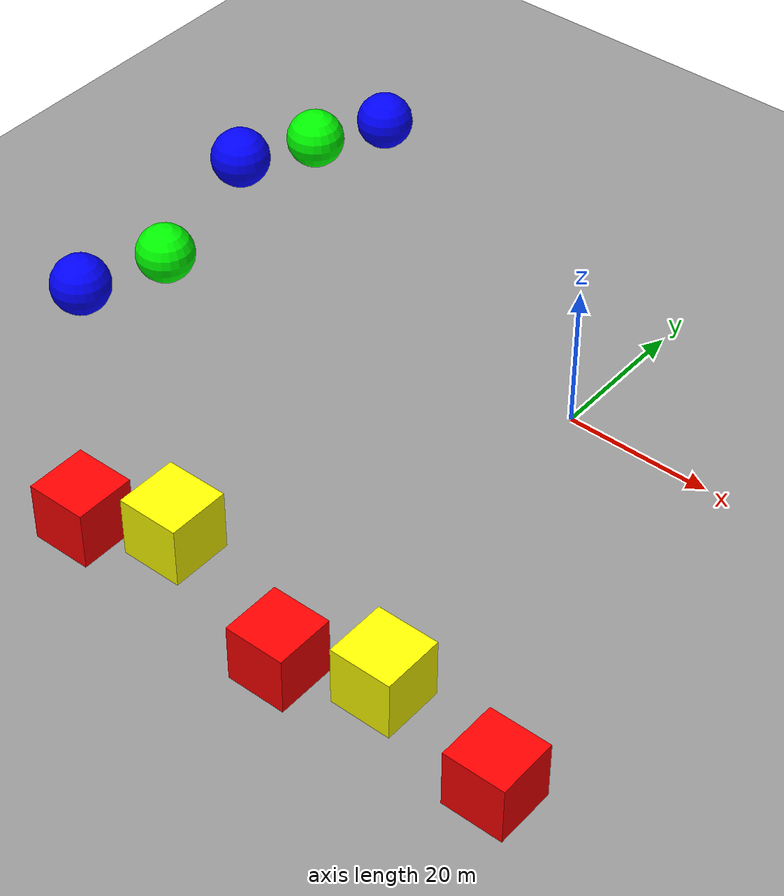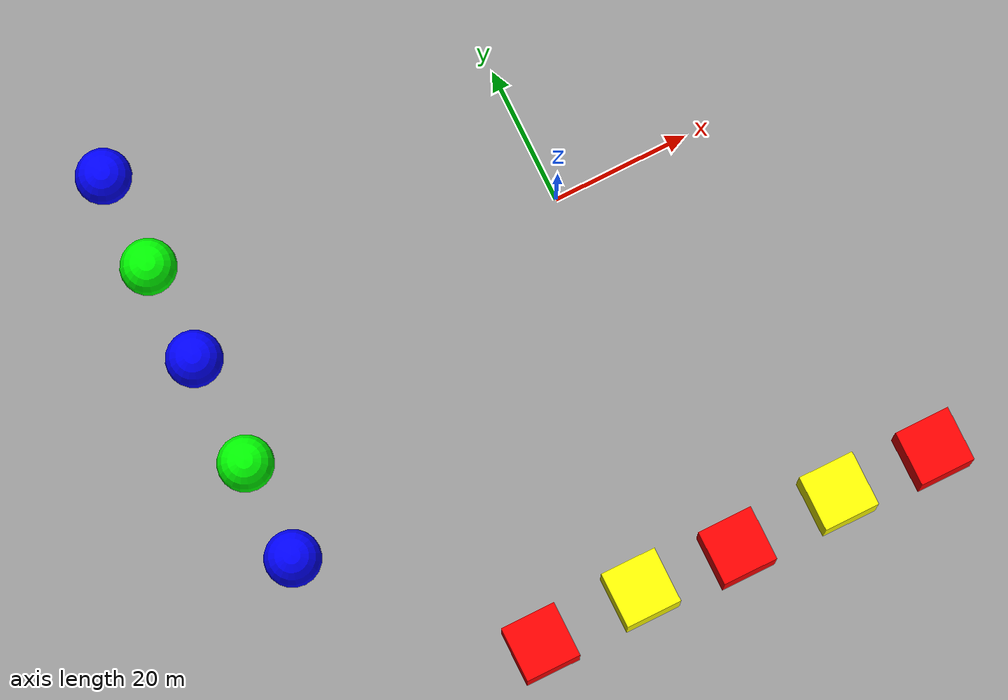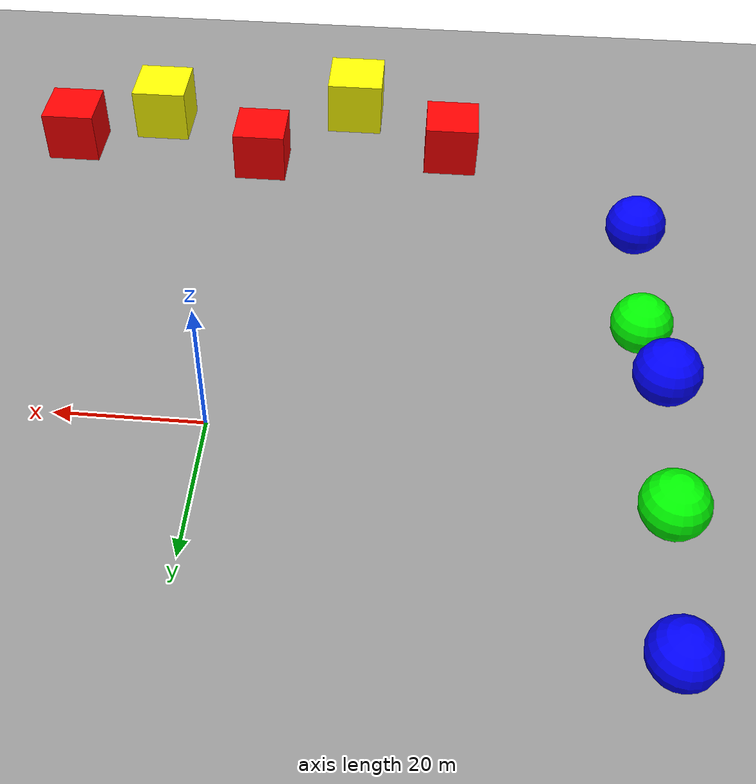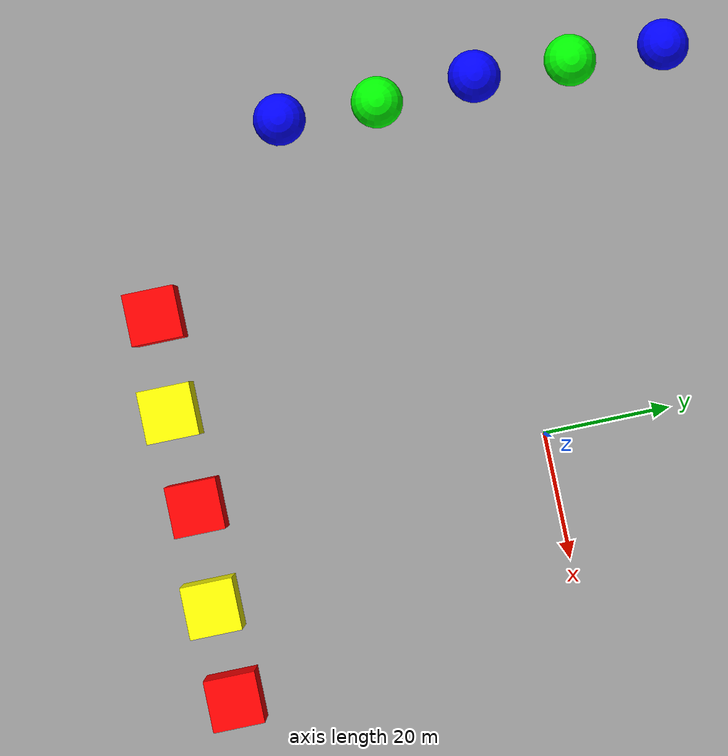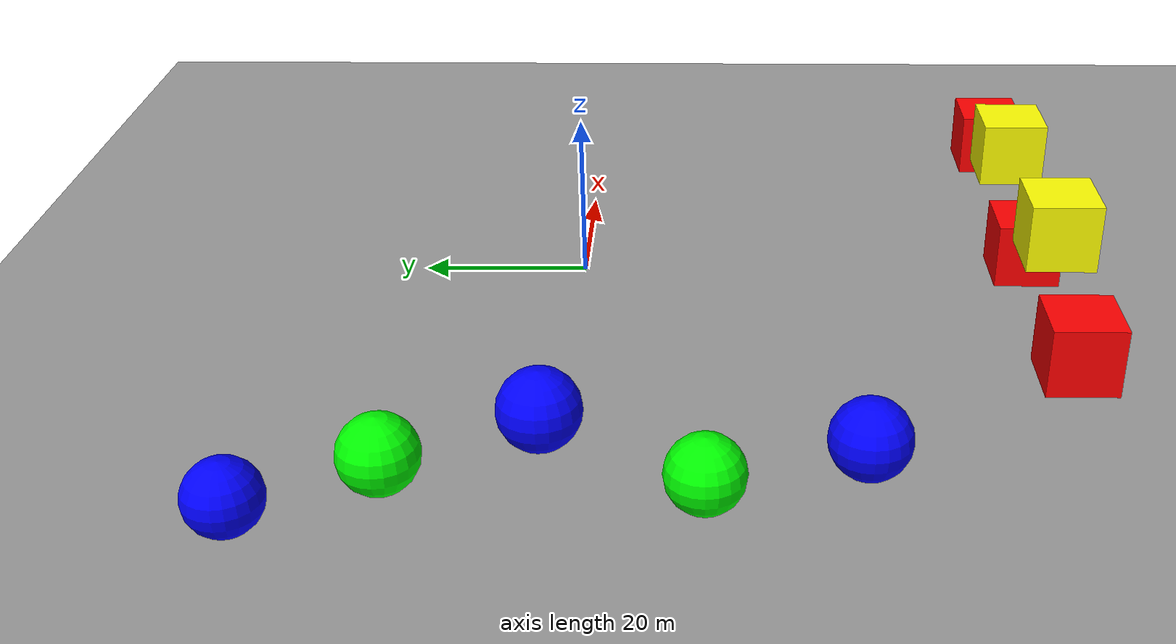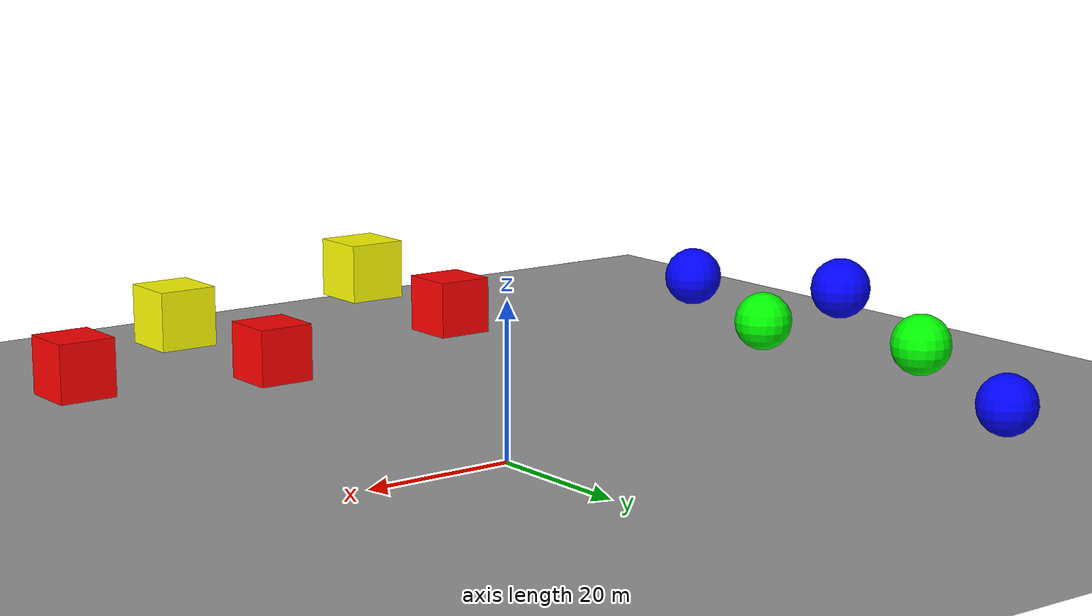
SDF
<sdf version="1.9">
 <world name="default">
  <physics type="ode">
   <max_step_size>0.01</max_step_size>
   <real_time_update_rate>60</real_time_update_rate>
  </physics>
  <model name="ground_plane">
   <static>true</static>
   <link name="link">
    <collision name="collision">
     <geometry><plane><normal>0 0 1</normal><size>100 100</size></plane></geometry>
     <surface><contact><collide_without_contact_bitmask>0x01</collide_without_contact_bitmask></contact></surface>
    </collision>
    <visual name="visual">
     <geometry><plane><normal>0 0 1</normal><size>100 100</size></plane></geometry>
     <material><ambient>0.6 0.6 0.6 1</ambient><diffuse>0.6 0.6 0.6 1</diffuse></material>
    </visual>
   </link>
  </model>
  <model name="moving_circle_1">
   <pose>-55.0 30.0 5.0 0 0 0</pose>
   <link name="moving_link">
    <gravity>false</gravity>
    <visual name="visual">
     <geometry><sphere><radius>4.0</radius></sphere></geometry>
     <material><ambient>0 0 1 1</ambient></material>
    </visual>
   </link>
   <motion>
    <link_name>moving_link</link_name>
    <direction>1 0 0</direction>
    <amplitude>110.0</amplitude>
    <speed>23.0</speed>
    <turnaround_threshold>0.5</turnaround_threshold>
   </motion>
  </model>
  <model name="moving_circle_2">
   <pose>-55.0 15.0 10.0 0 0 0</pose>
   <link name="moving_link">
    <gravity>false</gravity>
    <visual name="visual">
     <geometry><sphere><radius>4.0</radius></sphere></geometry>
     <material><ambient>0 1 0 1</ambient></material>
    </visual>
   </link>
   <motion>
    <link_name>moving_link</link_name>
    <direction>1 0 0</direction>
    <amplitude>110.0</amplitude>
    <speed>20.0</speed>
    <turnaround_threshold>0.5</turnaround_threshold>
   </motion>
  </model>
  <model name="moving_circle_3">
   <pose>-55.0 0.0 15.0 0 0 0</pose>
   <link name="moving_link">
    <gravity>false</gravity>
    <visual name="visual">
     <geometry><sphere><radius>4.0</radius></sphere></geometry>
     <material><ambient>0 0 1 1</ambient></material>
    </visual>
   </link>
   <motion>
    <link_name>moving_link</link_name>
    <direction>1 0 0</direction>
    <amplitude>110.0</amplitude>
    <speed>24.0</speed>
    <turnaround_threshold>0.5</turnaround_threshold>
   </motion>
  </model>
  <model name="moving_circle_4">
   <pose>-55.0 -15.0 8.0 0 0 0</pose>
   <link name="moving_link">
    <gravity>false</gravity>
    <visual name="visual">
     <geometry><sphere><radius>4.0</radius></sphere></geometry>
     <material><ambient>0 1 0 1</ambient></material>
    </visual>
   </link>
   <motion>
    <link_name>moving_link</link_name>
    <direction>1 0 0</direction>
    <amplitude>110.0</amplitude>
    <speed>28.0</speed>
    <turnaround_threshold>0.5</turnaround_threshold>
   </motion>
  </model>
  <model name="moving_circle_5">
   <pose>-55.0 -30.0 12.0 0 0 0</pose>
   <link name="moving_link">
    <gravity>false</gravity>
    <visual name="visual">
     <geometry><sphere><radius>4.0</radius></sphere></geometry>
     <material><ambient>0 0 1 1</ambient></material>
    </visual>
   </link>
   <motion>
    <link_name>moving_link</link_name>
    <direction>1 0 0</direction>
    <amplitude>110.0</amplitude>
    <speed>30.0</speed>
    <turnaround_threshold>0.5</turnaround_threshold>
   </motion>
  </model>
  <model name="moving_box_6">
   <pose>-30.0 -55.0 7.0 0 0 0</pose>
   <link name="moving_link">
    <gravity>false</gravity>
    <visual name="visual">
     <geometry><box><size>8.0 8.0 8.0</size></box></geometry>
     <material><ambient>1 0 0 1</ambient></material>
    </visual>
   </link>
   <motion>
    <link_name>moving_link</link_name>
    <direction>0 1 0</direction>
    <amplitude>110.0</amplitude>
    <speed>27.0</speed>
    <turnaround_threshold>0.5</turnaround_threshold>
   </motion>
  </model>
  <model name="moving_box_7">
   <pose>-15.0 -55.0 14.0 0 0 0</pose>
   <link name="moving_link">
    <gravity>false</gravity>
    <visual name="visual">
     <geometry><box><size>8.0 8.0 8.0</size></box></geometry>
     <material><ambient>1 1 0 1</ambient></material>
    </visual>
   </link>
   <motion>
    <link_name>moving_link</link_name>
    <direction>0 1 0</direction>
    <amplitude>110.0</amplitude>
    <speed>22.0</speed>
    <turnaround_threshold>0.5</turnaround_threshold>
   </motion>
  </model>
  <model name="moving_box_8">
   <pose>0.0 -55.0 4.0 0 0 0</pose>
   <link name="moving_link">
    <gravity>false</gravity>
    <visual name="visual">
     <geometry><box><size>8.0 8.0 8.0</size></box></geometry>
     <material><ambient>1 0 0 1</ambient></material>
    </visual>
   </link>
   <motion>
    <link_name>moving_link</link_name>
    <direction>0 1 0</direction>
    <amplitude>110.0</amplitude>
    <speed>24.0</speed>
    <turnaround_threshold>0.5</turnaround_threshold>
   </motion>
  </model>
  <model name="moving_box_9">
   <pose>15.0 -55.0 11.0 0 0 0</pose>
   <link name="moving_link">
    <gravity>false</gravity>
    <visual name="visual">
     <geometry><box><size>8.0 8.0 8.0</size></box></geometry>
     <material><ambient>1 1 0 1</ambient></material>
    </visual>
   </link>
   <motion>
    <link_name>moving_link</link_name>
    <direction>0 1 0</direction>
    <amplitude>110.0</amplitude>
    <speed>28.0</speed>
    <turnaround_threshold>0.5</turnaround_threshold>
   </motion>
  </model>
  <model name="moving_box_10">
   <pose>30.0 -55.0 6.0 0 0 0</pose>
   <link name="moving_link">
    <gravity>false</gravity>
    <visual name="visual">
     <geometry><box><size>8.0 8.0 8.0</size></box></geometry>
     <material><ambient>1 0 0 1</ambient></material>
    </visual>
   </link>
   <motion>
    <link_name>moving_link</link_name>
    <direction>0 1 0</direction>
    <amplitude>110.0</amplitude>
    <speed>30.0</speed>
    <turnaround_threshold>0.5</turnaround_threshold>
   </motion>
  </model>
 </world>
</sdf>
